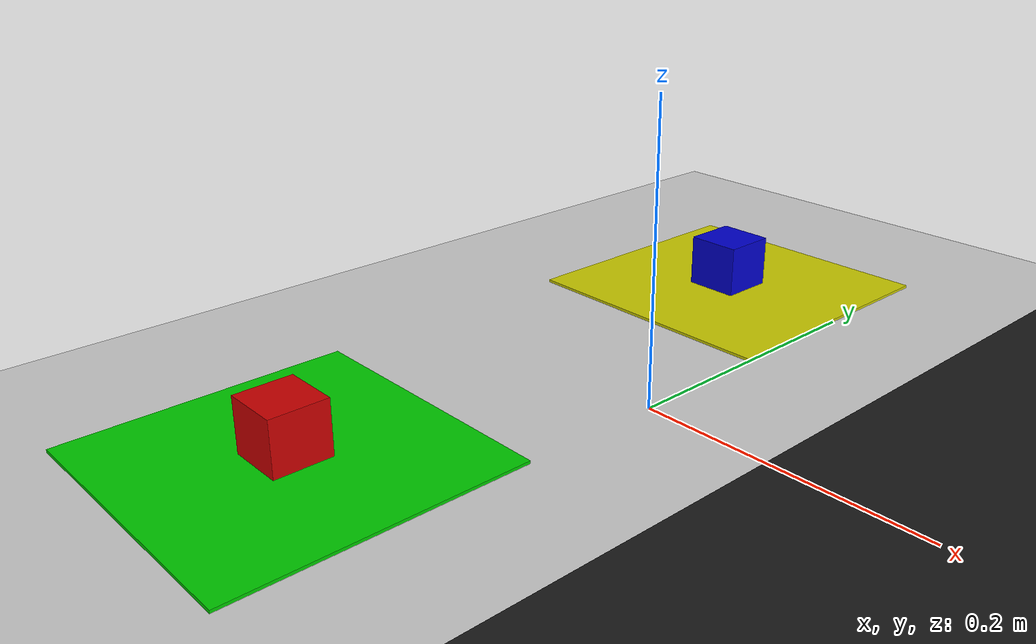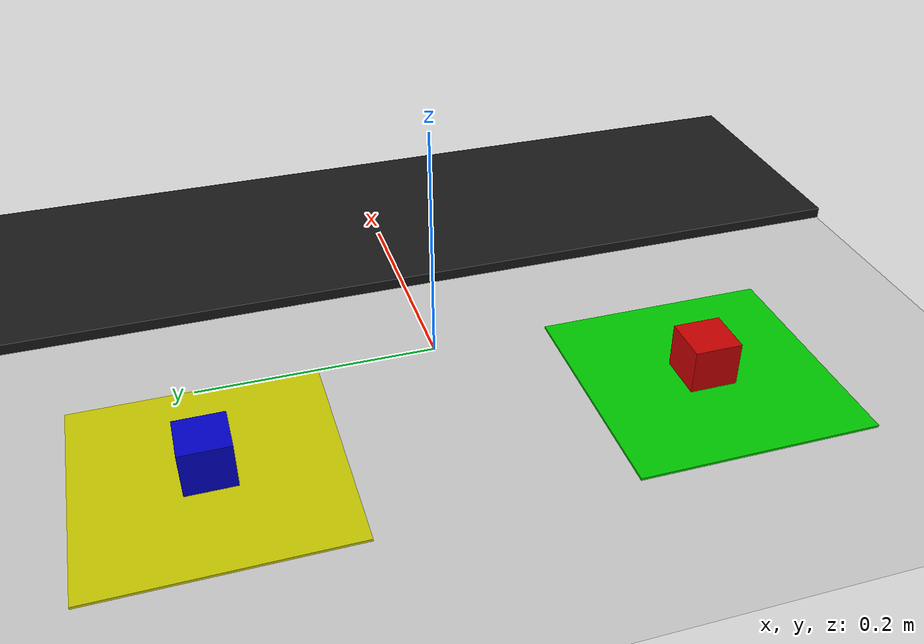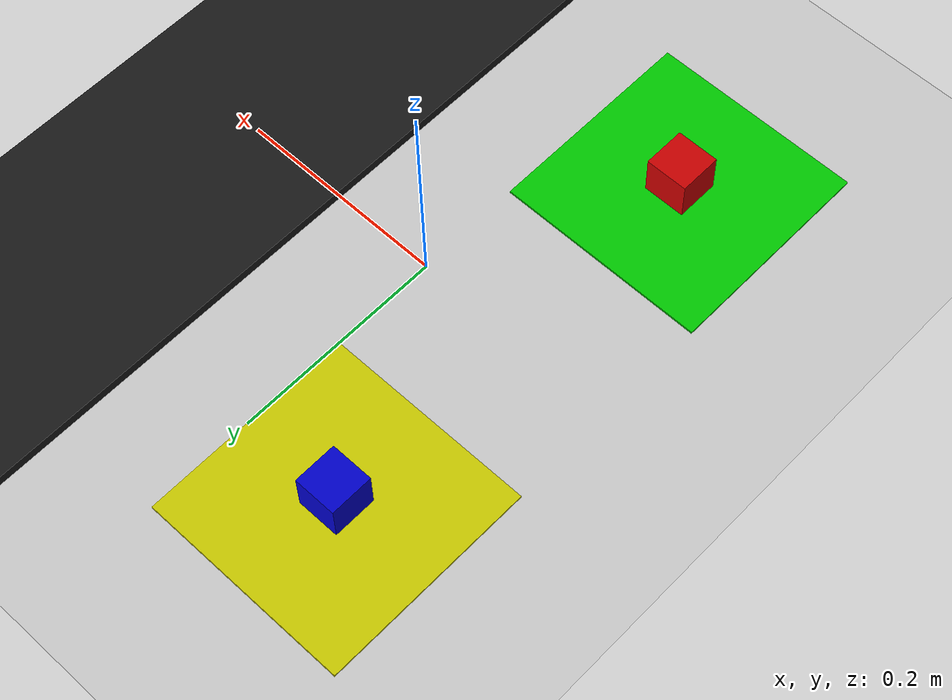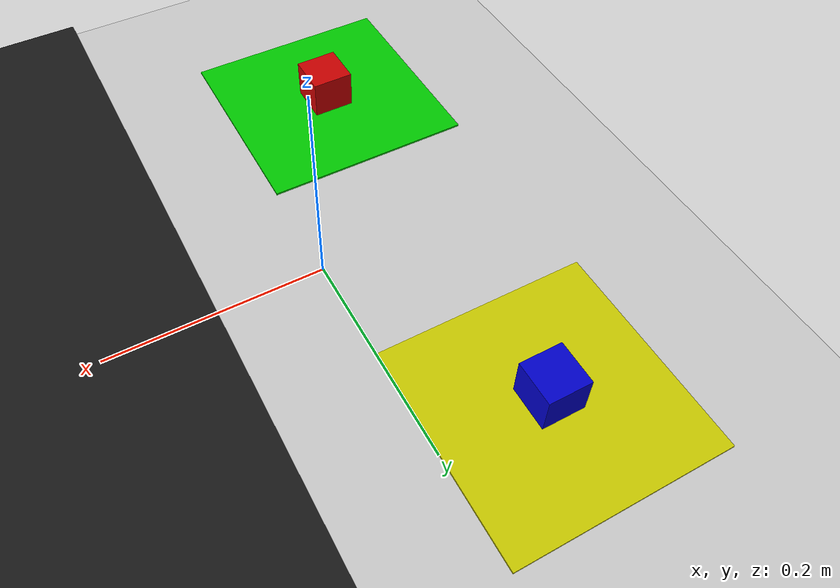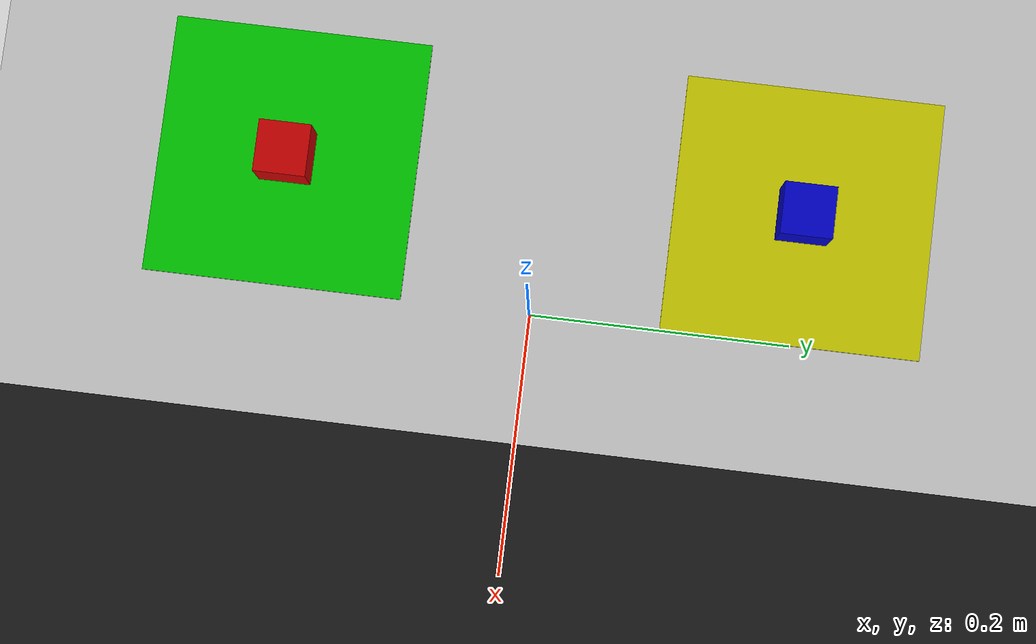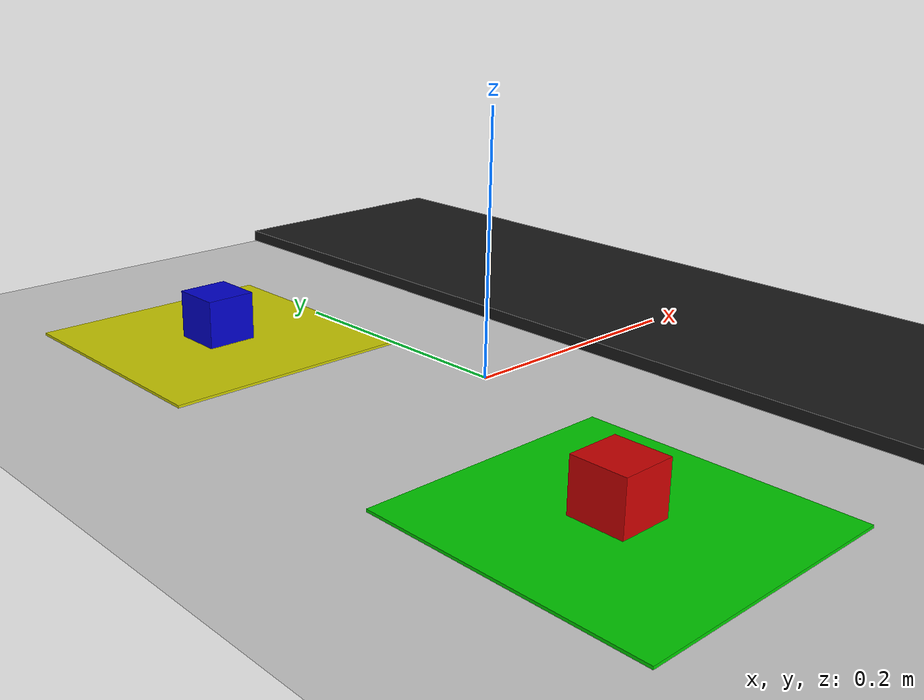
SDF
<?xml version="1.0" ?>
<sdf version="1.8">
  <world name="main1_world">
    <physics name="1ms" type="ignored">
      <max_step_size>0.001</max_step_size>
      <real_time_factor>1.0</real_time_factor>
    </physics>
    <plugin filename="ignition-gazebo-physics-system" name="gz::sim::systems::Physics" />
    <plugin filename="ignition-gazebo-user-commands-system" name="gz::sim::systems::UserCommands" />
    <plugin filename="ignition-gazebo-scene-broadcaster-system" name="gz::sim::systems::SceneBroadcaster" />
    <plugin filename="ignition-gazebo-contact-system" name="gz::sim::systems::Contact" />
    <plugin filename="ignition-gazebo-sensors-system" name="gz::sim::systems::Sensors">
      <render_engine>ogre2</render_engine>
    </plugin>

    <light type="directional" name="sun">
      <cast_shadows>true</cast_shadows>
      <pose>0 0 10 0 0 0</pose>
      <diffuse>0.8 0.8 0.8 1</diffuse>
      <specular>0.2 0.2 0.2 1</specular>
      <attenuation>
        <range>1000</range>
        <constant>0.9</constant>
        <linear>0.01</linear>
        <quadratic>0.001</quadratic>
      </attenuation>
      <direction>-0.5 0.1 -0.9</direction>
    </light>

    <model name="ground_plane">
      <static>true</static>
      <link name="link">
        <collision name="collision">
          <geometry><plane><normal>0 0 1</normal><size>100 100</size></plane></geometry>
        </collision>
        <visual name="visual">
          <geometry><plane><normal>0 0 1</normal><size>25 25</size></plane></geometry>
          <material>
            <ambient>0.8 0.8 0.8 1</ambient>
            <diffuse>0.8 0.8 0.8 1</diffuse>
            <specular>0.8 0.8 0.8 1</specular>
          </material>
        </visual>
      </link>
    </model>

    <!-- Plano de la cinta transportadora -->
    <model name="conveyor_environment">
      <static>true</static>

      <link name="conveyor_link">
        <pose>0.35 0 0.005 0 0 0</pose>
        <visual name="conveyor_visual">
          <geometry><box><size>0.5 3.0 0.01</size></box></geometry>
          <material>
            <ambient>0.1 0.1 0.1 1</ambient>
            <diffuse>0.1 0.1 0.1 1</diffuse>
          </material>
        </visual>
        <collision name="conveyor_collision">
          <geometry><box><size>0.6 3.0 0.01</size></box></geometry>
        </collision>
      </link>

      <!-- Puntos de referencia para los cubos -->
      <link name="pointA_link">
        <pose>-0.1 -0.2 0.001 0 0 0</pose>
        <visual name="pointA_visual">
          <geometry><box><size>0.2 0.2 0.002</size></box></geometry>
          <material>
            <ambient>0.0 0.8 0.0 1</ambient>
            <diffuse>0.0 0.8 0.0 1</diffuse>
          </material>
        </visual>
      </link>

      <link name="pointB_link">
        <pose>-0.1 0.2 0.001 0 0 0</pose>
        <visual name="pointB_visual">
          <geometry><box><size>0.2 0.2 0.002</size></box></geometry>
          <material>
            <ambient>0.8 0.8 0.0 1</ambient>
            <diffuse>0.8 0.8 0.0 1</diffuse>
          </material>
        </visual>
      </link>
    </model>

    <!-- Cubo rojo -->
    <model name="red_cube">
      <static>false</static>
      <pose>-0.1 -0.2 0.02 0 0 0</pose>
      <link name="cube_link">
        <inertial>
          <mass>0.05</mass>
          <inertia>
            <ixx>0.00001333</ixx>
            <iyy>0.00001333</iyy>
            <izz>0.00001333</izz>
            <ixy>0</ixy>
            <ixz>0</ixz>
            <iyz>0</iyz>
          </inertia>
        </inertial>

        <!-- Contact sensor: reporta colisiones al topic /world/main1_world/contact -->
        <sensor name="cube_contact_sensor" type="contact">
          <contact>
            <collision>collision</collision>
          </contact>
          <always_on>true</always_on>
          <update_rate>100</update_rate>
        </sensor>

        <collision name="collision">
          <geometry><box><size>0.04 0.04 0.04</size></box></geometry>
          <surface>
            <friction>
              <ode>
                <mu>0.8</mu>
                <mu2>0.8</mu2>
              </ode>
            </friction>
            <!-- Reducimos la restitución para evitar rebotes al contacto -->
            <bounce>
              <restitution_coefficient>0.0</restitution_coefficient>
              <threshold>100000</threshold>
            </bounce>
            <contact>
              <ode>
                <kp>100000</kp>
                <kd>1</kd>
              </ode>
            </contact>
          </surface>
        </collision>

        <visual name="visual">
          <geometry><box><size>0.04 0.04 0.04</size></box></geometry>
          <material>
            <ambient>0.8 0.0 0.0 1</ambient>
            <diffuse>0.8 0.0 0.0 1</diffuse>
            <specular>0.1 0.1 0.1 1</specular>
          </material>
        </visual>
      </link>
    </model>

    <!-- Cubo azul -->
    <model name="blue_cube">
      <static>false</static>
      <pose>-0.1 0.2 0.02 0 0 0</pose>
      <link name="cube_link">
        <inertial>
          <mass>0.05</mass>
          <inertia>
            <ixx>0.00001333</ixx>
            <iyy>0.00001333</iyy>
            <izz>0.00001333</izz>
            <ixy>0</ixy>
            <ixz>0</ixz>
            <iyz>0</iyz>
          </inertia>
        </inertial>

        <sensor name="blue_cube_contact_sensor" type="contact">
          <contact>
            <collision>collision</collision>
          </contact>
          <always_on>true</always_on>
          <update_rate>100</update_rate>
        </sensor>

        <collision name="collision">
          <geometry><box><size>0.04 0.04 0.04</size></box></geometry>
          <surface>
            <friction>
              <ode>
                <mu>0.8</mu>
                <mu2>0.8</mu2>
              </ode>
            </friction>
            <bounce>
              <restitution_coefficient>0.0</restitution_coefficient>
              <threshold>100000</threshold>
            </bounce>
            <contact>
              <ode>
                <kp>100000</kp>
                <kd>1</kd>
              </ode>
            </contact>
          </surface>
        </collision>

        <visual name="visual">
          <geometry><box><size>0.04 0.04 0.04</size></box></geometry>
          <material>
            <ambient>0.0 0.0 0.8 1</ambient>
            <diffuse>0.0 0.0 0.8 1</diffuse>
            <specular>0.1 0.1 0.1 1</specular>
          </material>
        </visual>
      </link>
    </model>

    <!-- Cámara externa -->
    <model name="external_camera">
      <static>true</static>
      <pose>1.2 0 0.8 0 0.5 3.14159</pose>
      <link name="camera_link">
        <sensor name="camera" type="camera">
          <camera>
            <horizontal_fov>1.047</horizontal_fov>
            <image><width>640</width><height>480</height></image>
            <clip><near>0.1</near><far>10</far></clip>
          </camera>
          <always_on>1</always_on>
          <update_rate>30</update_rate>
          <visualize>true</visualize>
          <topic>camera/image_raw</topic>
        </sensor>
      </link>
    </model>

    <!-- Cámara en vista caballera -->
    <model name="camera_caballera">
      <static>true</static>
      <pose>0.75 0.75 0.75 0 0.615 -2.356</pose>
      <link name="camera_caballera_link">
        <sensor name="camera_caballera_sensor" type="camera">
          <camera>
            <horizontal_fov>1.047</horizontal_fov>
            <image><width>640</width><height>480</height></image>
            <clip><near>0.1</near><far>10</far></clip>
          </camera>
          <always_on>1</always_on>
          <update_rate>30</update_rate>
          <visualize>true</visualize>
          <topic>camera_caballera/image_raw</topic>
        </sensor>
      </link>
    </model>

  </world>
</sdf>
